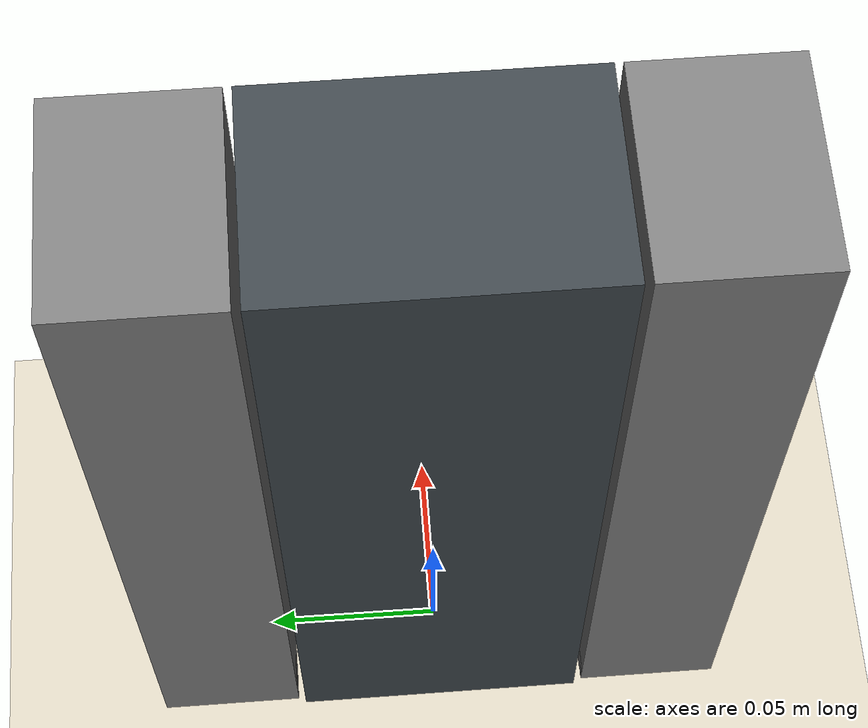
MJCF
<mujoco model="tars_v3">
  <compiler angle="radian"/>
  <option timestep="0.002" gravity="0 0 -9.81"/>
  <default>
    <geom friction="0.9 0.02 0.001"/>
  </default>

  <worldbody>
    <geom name="floor" type="plane" size="10 10 0.1" friction="1.0 0.02 0.001" rgba="0.85 0.82 0.75 1"/>
    <light pos="0 0 2" dir="0 0 -1"/>

    <body name="body" pos="0 0 0.2200">
      <freejoint/>
      <geom type="box" size="0.0275 0.0410 0.1215" pos="0 0 -0.0965" mass="0.522" rgba="0.25 0.28 0.3 1"/>
        <geom type="cylinder" size="0.0060 0.0410" pos="-0.0215 0 -0.2130" euler="1.5708 0 0" mass="0.005" friction="1.3 0.02 0.001"/>
        <geom type="cylinder" size="0.0060 0.0410" pos="0.0215 0 -0.2130" euler="1.5708 0 0" mass="0.005" friction="1.3 0.02 0.001"/>
      <!-- battery + Pi modelled low in the chassis -->
      <geom type="box" size="0.020 0.030 0.040" pos="0 0 -0.1640" mass="0.427" contype="0" conaffinity="0" rgba="0.2 0.5 0.3 1"/>

      <body name="left_leg" pos="0 -0.0630 0">
        <joint name="left_leg_lift" type="slide" axis="0 0 1" range="-0.035 0"
               damping="8" frictionloss="4"/>
        <joint name="left_leg_swing" type="hinge" axis="0 1 0" range="-1.75 1.75"
               damping="0.05" frictionloss="0.2"/>
        <geom type="box" size="0.0275 0.0200 0.1195" pos="0 0 -0.0945" mass="0.16"/>
        <geom type="cylinder" size="0.0060 0.0200" pos="-0.0215 0 -0.2090" euler="1.5708 0 0" mass="0.005" friction="1.3 0.02 0.001"/>
        <geom type="cylinder" size="0.0060 0.0200" pos="0.0215 0 -0.2090" euler="1.5708 0 0" mass="0.005" friction="1.3 0.02 0.001"/>
      </body>

      <body name="right_leg" pos="0 0.0630 0">
        <joint name="right_leg_lift" type="slide" axis="0 0 1" range="-0.035 0"
               damping="8" frictionloss="4"/>
        <joint name="right_leg_swing" type="hinge" axis="0 1 0" range="-1.75 1.75"
               damping="0.05" frictionloss="0.2"/>
        <geom type="box" size="0.0275 0.0200 0.1195" pos="0 0 -0.0945" mass="0.16"/>
        <geom type="cylinder" size="0.0060 0.0200" pos="-0.0215 0 -0.2090" euler="1.5708 0 0" mass="0.005" friction="1.3 0.02 0.001"/>
        <geom type="cylinder" size="0.0060 0.0200" pos="0.0215 0 -0.2090" euler="1.5708 0 0" mass="0.005" friction="1.3 0.02 0.001"/>
      </body>
    </body>
  </worldbody>

  <actuator>
    <position name="left_lift"   joint="left_leg_lift"   kp="3000" kv="80"
              ctrlrange="-0.035 0" forcerange="-55.0 55.0"/>
    <position name="right_lift"  joint="right_leg_lift"  kp="3000" kv="80"
              ctrlrange="-0.035 0" forcerange="-55.0 55.0"/>
    <position name="left_swing"  joint="left_leg_swing"  kp="60" kv="2"
              ctrlrange="-1.75 1.75" forcerange="-1.0 1.0"/>
    <position name="right_swing" joint="right_leg_swing" kp="60" kv="2"
              ctrlrange="-1.75 1.75" forcerange="-1.0 1.0"/>
  </actuator>
</mujoco>
